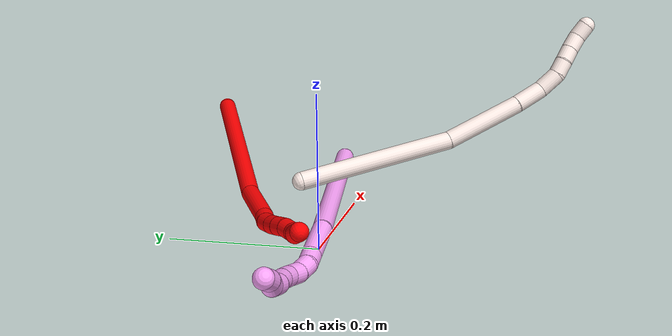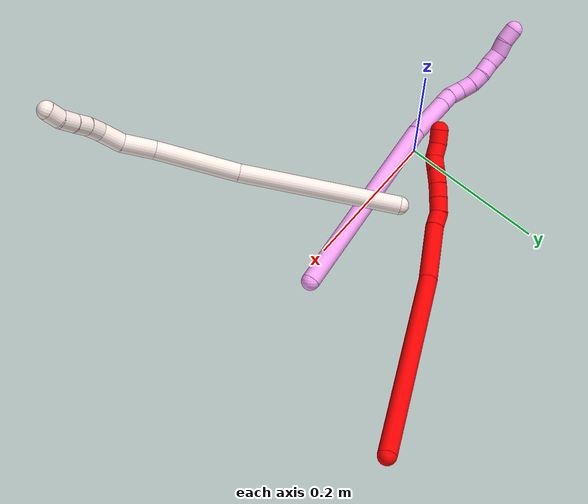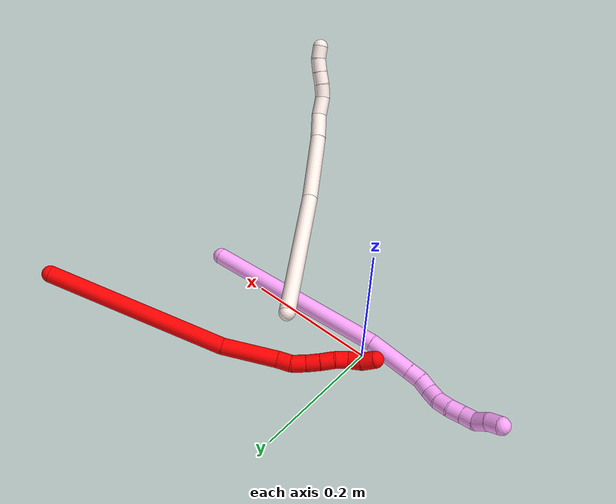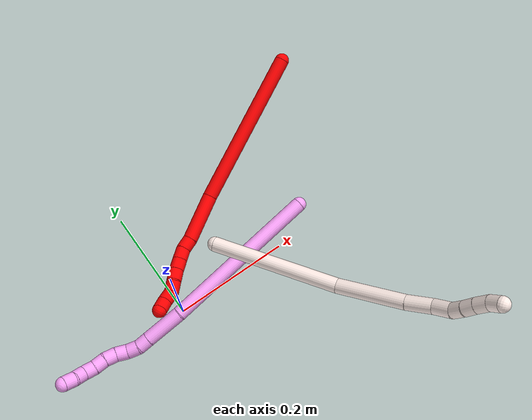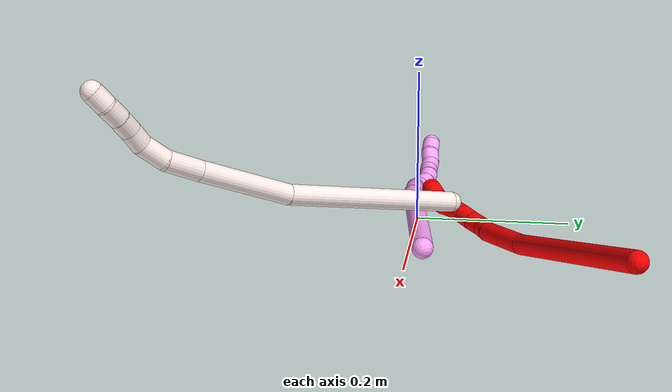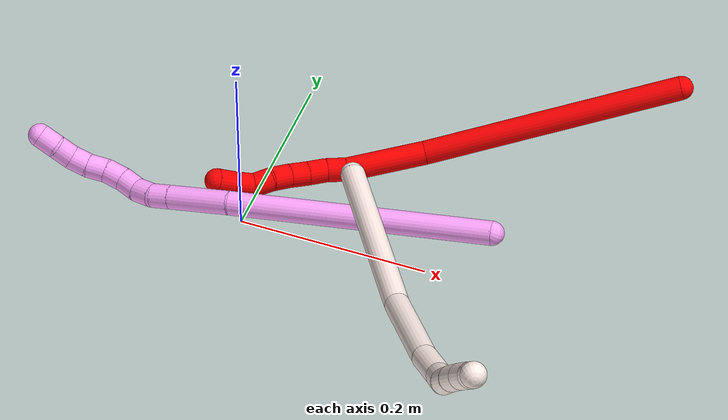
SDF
<sdf version="1.7">
 <world name="default">
  <model name="2">
   <static>0</static>
   <link name="2">
    <collision name="collision-cylinder-e_1_1_4">
     <pose>0.000146 -7.5e-05 -0.136751 3.14105 0.001065 2.19373</pose>
     <geometry><cylinder><radius>0.0125</radius><length>0.273503</length></cylinder></geometry>
     <surface>
      <friction><ode><mu>1.16</mu><mu2>1.16</mu2><slip1>0</slip1><slip2>0</slip2></ode></friction>
      <contact><ode><kp>1e+06</kp><kd>1</kd><max_vel>0</max_vel><min_depth>0.001</min_depth></ode></contact>
     </surface>
    </collision>
    <visual name="visual-cylinder-e_1_1_4">
     <pose>0.000146 -7.5e-05 -0.136751 3.14105 0.001065 2.19373</pose>
     <geometry><cylinder><radius>0.0125</radius><length>0.273503</length></cylinder></geometry>
     <material><ambient>1 0 0 1</ambient></material>
    </visual>
    <collision name="collision-cylinder-e_2_4_5">
     <pose>-0.00496 -0.004919 -0.314505 3.02578 -0.126531 -1.65943</pose>
     <geometry><cylinder><radius>0.0125</radius><length>0.083223</length></cylinder></geometry>
     <surface>
      <friction><ode><mu>1.16</mu><mu2>1.16</mu2><slip1>0</slip1><slip2>0</slip2></ode></friction>
      <contact><ode><kp>1e+06</kp><kd>1</kd><max_vel>0</max_vel><min_depth>0.001</min_depth></ode></contact>
     </surface>
    </collision>
    <visual name="visual-cylinder-e_2_4_5">
     <pose>-0.00496 -0.004919 -0.314505 3.02578 -0.126531 -1.65943</pose>
     <geometry><cylinder><radius>0.0125</radius><length>0.083223</length></cylinder></geometry>
     <material><ambient>1 0 0 1</ambient></material>
    </visual>
    <collision name="collision-cylinder-e_3_5_6">
     <pose>-0.012813 -0.009418 -0.365787 -3.11526 -0.247831 2.93097</pose>
     <geometry><cylinder><radius>0.0125</radius><length>0.021214</length></cylinder></geometry>
     <surface>
      <friction><ode><mu>1.16</mu><mu2>1.16</mu2><slip1>0</slip1><slip2>0</slip2></ode></friction>
      <contact><ode><kp>1e+06</kp><kd>1</kd><max_vel>0</max_vel><min_depth>0.001</min_depth></ode></contact>
     </surface>
    </collision>
    <visual name="visual-cylinder-e_3_5_6">
     <pose>-0.012813 -0.009418 -0.365787 -3.11526 -0.247831 2.93097</pose>
     <geometry><cylinder><radius>0.0125</radius><length>0.021214</length></cylinder></geometry>
     <material><ambient>1 0 0 1</ambient></material>
    </visual>
    <collision name="collision-cylinder-e_4_6_7">
     <pose>-0.018673 -0.012293 -0.38583 2.82997 -0.307532 -1.55737</pose>
     <geometry><cylinder><radius>0.0125</radius><length>0.021525</length></cylinder></geometry>
     <surface>
      <friction><ode><mu>1.16</mu><mu2>1.16</mu2><slip1>0</slip1><slip2>0</slip2></ode></friction>
      <contact><ode><kp>1e+06</kp><kd>1</kd><max_vel>0</max_vel><min_depth>0.001</min_depth></ode></contact>
     </surface>
    </collision>
    <visual name="visual-cylinder-e_4_6_7">
     <pose>-0.018673 -0.012293 -0.38583 2.82997 -0.307532 -1.55737</pose>
     <geometry><cylinder><radius>0.0125</radius><length>0.021525</length></cylinder></geometry>
     <material><ambient>1 0 0 1</ambient></material>
    </visual>
    <collision name="collision-cylinder-e_5_7_8">
     <pose>-0.025749 -0.018811 -0.40445 2.77768 -0.383024 -1.62316</pose>
     <geometry><cylinder><radius>0.0125</radius><length>0.020435</length></cylinder></geometry>
     <surface>
      <friction><ode><mu>1.16</mu><mu2>1.16</mu2><slip1>0</slip1><slip2>0</slip2></ode></friction>
      <contact><ode><kp>1e+06</kp><kd>1</kd><max_vel>0</max_vel><min_depth>0.001</min_depth></ode></contact>
     </surface>
    </collision>
    <visual name="visual-cylinder-e_5_7_8">
     <pose>-0.025749 -0.018811 -0.40445 2.77768 -0.383024 -1.62316</pose>
     <geometry><cylinder><radius>0.0125</radius><length>0.020435</length></cylinder></geometry>
     <material><ambient>1 0 0 1</ambient></material>
    </visual>
    <collision name="collision-cylinder-e_6_8_9">
     <pose>-0.033024 -0.026185 -0.421846 2.70343 -0.351336 -1.34605</pose>
     <geometry><cylinder><radius>0.0125</radius><length>0.020089</length></cylinder></geometry>
     <surface>
      <friction><ode><mu>1.16</mu><mu2>1.16</mu2><slip1>0</slip1><slip2>0</slip2></ode></friction>
      <contact><ode><kp>1e+06</kp><kd>1</kd><max_vel>0</max_vel><min_depth>0.001</min_depth></ode></contact>
     </surface>
    </collision>
    <visual name="visual-cylinder-e_6_8_9">
     <pose>-0.033024 -0.026185 -0.421846 2.70343 -0.351336 -1.34605</pose>
     <geometry><cylinder><radius>0.0125</radius><length>0.020089</length></cylinder></geometry>
     <material><ambient>1 0 0 1</ambient></material>
    </visual>
    <collision name="collision-cylinder-e_7_9_10">
     <pose>-0.038015 -0.033724 -0.439614 2.77554 -0.153956 -0.789644</pose>
     <geometry><cylinder><radius>0.0125</radius><length>0.020003</length></cylinder></geometry>
     <surface>
      <friction><ode><mu>1.16</mu><mu2>1.16</mu2><slip1>0</slip1><slip2>0</slip2></ode></friction>
      <contact><ode><kp>1e+06</kp><kd>1</kd><max_vel>0</max_vel><min_depth>0.001</min_depth></ode></contact>
     </surface>
    </collision>
    <visual name="visual-cylinder-e_7_9_10">
     <pose>-0.038015 -0.033724 -0.439614 2.77554 -0.153956 -0.789644</pose>
     <geometry><cylinder><radius>0.0125</radius><length>0.020003</length></cylinder></geometry>
     <material><ambient>1 0 0 1</ambient></material>
    </visual>
    <collision name="collision-cylinder-e_8_10_11">
     <pose>-0.044055 -0.037624 -0.457766 3.10104 -0.467371 -2.97161</pose>
     <geometry><cylinder><radius>0.0125</radius><length>0.020006</length></cylinder></geometry>
     <surface>
      <friction><ode><mu>1.16</mu><mu2>1.16</mu2><slip1>0</slip1><slip2>0</slip2></ode></friction>
      <contact><ode><kp>1e+06</kp><kd>1</kd><max_vel>0</max_vel><min_depth>0.001</min_depth></ode></contact>
     </surface>
    </collision>
    <visual name="visual-cylinder-e_8_10_11">
     <pose>-0.044055 -0.037624 -0.457766 3.10104 -0.467371 -2.97161</pose>
     <geometry><cylinder><radius>0.0125</radius><length>0.020006</length></cylinder></geometry>
     <material><ambient>1 0 0 1</ambient></material>
    </visual>
    <collision name="collision-cylinder-e_9_11_2">
     <pose>-0.054673 -0.040168 -0.474299 2.86232 -0.657337 -2.35976</pose>
     <geometry><cylinder><radius>0.0125</radius><length>0.020002</length></cylinder></geometry>
     <surface>
      <friction><ode><mu>1.16</mu><mu2>1.16</mu2><slip1>0</slip1><slip2>0</slip2></ode></friction>
      <contact><ode><kp>1e+06</kp><kd>1</kd><max_vel>0</max_vel><min_depth>0.001</min_depth></ode></contact>
     </surface>
    </collision>
    <visual name="visual-cylinder-e_9_11_2">
     <pose>-0.054673 -0.040168 -0.474299 2.86232 -0.657337 -2.35976</pose>
     <geometry><cylinder><radius>0.0125</radius><length>0.020002</length></cylinder></geometry>
     <material><ambient>1 0 0 1</ambient></material>
    </visual>
    <collision name="collision-sphere-2">
     <pose>-0.060784 -0.04235 -0.481909 0 -0 0</pose>
     <geometry><sphere><radius>0.0125</radius></sphere></geometry>
     <surface>
      <friction><ode><mu>1.16</mu><mu2>1.16</mu2><slip1>0</slip1><slip2>0</slip2></ode></friction>
      <contact><ode><kp>1e+06</kp><kd>1</kd><max_vel>0</max_vel><min_depth>0.001</min_depth></ode></contact>
     </surface>
    </collision>
    <visual name="visual-sphere-2">
     <pose>-0.060784 -0.04235 -0.481909 0 -0 0</pose>
     <geometry><sphere><radius>0.0125</radius></sphere></geometry>
     <material><ambient>1 0 0 1</ambient></material>
    </visual>
    <collision name="collision-sphere-11">
     <pose>-0.048562 -0.037986 -0.466689 0 -0 0</pose>
     <geometry><sphere><radius>0.0125</radius></sphere></geometry>
     <surface>
      <friction><ode><mu>1.16</mu><mu2>1.16</mu2><slip1>0</slip1><slip2>0</slip2></ode></friction>
      <contact><ode><kp>1e+06</kp><kd>1</kd><max_vel>0</max_vel><min_depth>0.001</min_depth></ode></contact>
     </surface>
    </collision>
    <visual name="visual-sphere-11">
     <pose>-0.048562 -0.037986 -0.466689 0 -0 0</pose>
     <geometry><sphere><radius>0.0125</radius></sphere></geometry>
     <material><ambient>1 0 0 1</ambient></material>
    </visual>
    <collision name="collision-sphere-10">
     <pose>-0.039549 -0.037261 -0.448843 0 -0 0</pose>
     <geometry><sphere><radius>0.0125</radius></sphere></geometry>
     <surface>
      <friction><ode><mu>1.16</mu><mu2>1.16</mu2><slip1>0</slip1><slip2>0</slip2></ode></friction>
      <contact><ode><kp>1e+06</kp><kd>1</kd><max_vel>0</max_vel><min_depth>0.001</min_depth></ode></contact>
     </surface>
    </collision>
    <visual name="visual-sphere-10">
     <pose>-0.039549 -0.037261 -0.448843 0 -0 0</pose>
     <geometry><sphere><radius>0.0125</radius></sphere></geometry>
     <material><ambient>1 0 0 1</ambient></material>
    </visual>
    <collision name="collision-sphere-9">
     <pose>-0.036481 -0.030186 -0.430386 0 -0 0</pose>
     <geometry><sphere><radius>0.0125</radius></sphere></geometry>
     <surface>
      <friction><ode><mu>1.16</mu><mu2>1.16</mu2><slip1>0</slip1><slip2>0</slip2></ode></friction>
      <contact><ode><kp>1e+06</kp><kd>1</kd><max_vel>0</max_vel><min_depth>0.001</min_depth></ode></contact>
     </surface>
    </collision>
    <visual name="visual-sphere-9">
     <pose>-0.036481 -0.030186 -0.430386 0 -0 0</pose>
     <geometry><sphere><radius>0.0125</radius></sphere></geometry>
     <material><ambient>1 0 0 1</ambient></material>
    </visual>
    <collision name="collision-sphere-4">
     <pose>0.000291 -0.000149 -0.273503 0 -0 0</pose>
     <geometry><sphere><radius>0.0125</radius></sphere></geometry>
     <surface>
      <friction><ode><mu>1.16</mu><mu2>1.16</mu2><slip1>0</slip1><slip2>0</slip2></ode></friction>
      <contact><ode><kp>1e+06</kp><kd>1</kd><max_vel>0</max_vel><min_depth>0.001</min_depth></ode></contact>
     </surface>
    </collision>
    <visual name="visual-sphere-4">
     <pose>0.000291 -0.000149 -0.273503 0 -0 0</pose>
     <geometry><sphere><radius>0.0125</radius></sphere></geometry>
     <material><ambient>1 0 0 1</ambient></material>
    </visual>
    <collision name="collision-sphere-1">
     <geometry><sphere><radius>0.0125</radius></sphere></geometry>
     <surface>
      <friction><ode><mu>1.16</mu><mu2>1.16</mu2><slip1>0</slip1><slip2>0</slip2></ode></friction>
      <contact><ode><kp>1e+06</kp><kd>1</kd><max_vel>0</max_vel><min_depth>0.001</min_depth></ode></contact>
     </surface>
    </collision>
    <visual name="visual-sphere-1">
     <geometry><sphere><radius>0.0125</radius></sphere></geometry>
     <material><ambient>1 0 0 1</ambient></material>
    </visual>
    <collision name="collision-sphere-8">
     <pose>-0.029568 -0.022184 -0.413306 0 -0 0</pose>
     <geometry><sphere><radius>0.0125</radius></sphere></geometry>
     <surface>
      <friction><ode><mu>1.16</mu><mu2>1.16</mu2><slip1>0</slip1><slip2>0</slip2></ode></friction>
      <contact><ode><kp>1e+06</kp><kd>1</kd><max_vel>0</max_vel><min_depth>0.001</min_depth></ode></contact>
     </surface>
    </collision>
    <visual name="visual-sphere-8">
     <pose>-0.029568 -0.022184 -0.413306 0 -0 0</pose>
     <geometry><sphere><radius>0.0125</radius></sphere></geometry>
     <material><ambient>1 0 0 1</ambient></material>
    </visual>
    <collision name="collision-sphere-5">
     <pose>-0.010211 -0.009689 -0.355508 0 -0 0</pose>
     <geometry><sphere><radius>0.0125</radius></sphere></geometry>
     <surface>
      <friction><ode><mu>1.16</mu><mu2>1.16</mu2><slip1>0</slip1><slip2>0</slip2></ode></friction>
      <contact><ode><kp>1e+06</kp><kd>1</kd><max_vel>0</max_vel><min_depth>0.001</min_depth></ode></contact>
     </surface>
    </collision>
    <visual name="visual-sphere-5">
     <pose>-0.010211 -0.009689 -0.355508 0 -0 0</pose>
     <geometry><sphere><radius>0.0125</radius></sphere></geometry>
     <material><ambient>1 0 0 1</ambient></material>
    </visual>
    <collision name="collision-sphere-6">
     <pose>-0.015415 -0.009148 -0.376066 0 -0 0</pose>
     <geometry><sphere><radius>0.0125</radius></sphere></geometry>
     <surface>
      <friction><ode><mu>1.16</mu><mu2>1.16</mu2><slip1>0</slip1><slip2>0</slip2></ode></friction>
      <contact><ode><kp>1e+06</kp><kd>1</kd><max_vel>0</max_vel><min_depth>0.001</min_depth></ode></contact>
     </surface>
    </collision>
    <visual name="visual-sphere-6">
     <pose>-0.015415 -0.009148 -0.376066 0 -0 0</pose>
     <geometry><sphere><radius>0.0125</radius></sphere></geometry>
     <material><ambient>1 0 0 1</ambient></material>
    </visual>
    <collision name="collision-sphere-7">
     <pose>-0.021931 -0.015438 -0.395593 0 -0 0</pose>
     <geometry><sphere><radius>0.0125</radius></sphere></geometry>
     <surface>
      <friction><ode><mu>1.16</mu><mu2>1.16</mu2><slip1>0</slip1><slip2>0</slip2></ode></friction>
      <contact><ode><kp>1e+06</kp><kd>1</kd><max_vel>0</max_vel><min_depth>0.001</min_depth></ode></contact>
     </surface>
    </collision>
    <visual name="visual-sphere-7">
     <pose>-0.021931 -0.015438 -0.395593 0 -0 0</pose>
     <geometry><sphere><radius>0.0125</radius></sphere></geometry>
     <material><ambient>1 0 0 1</ambient></material>
    </visual>
    <inertial>
     <pose>-0.009943 -0.008071 -0.247638 0 -0 0</pose>
     <mass>0.5</mass>
     <inertia><ixx>0.000324</ixx><ixy>0</ixy><ixz>0</ixz><iyy>0.002343</iyy><iyz>0</iyz><izz>-2e-05</izz></inertia>
    </inertial>
   </link>
   <pose>0.388406 0.254164 0.091844 -0.560455 1.26297 -0.133069</pose>
  </model>
  <model name="4">
   <static>0</static>
   <link name="4">
    <collision name="collision-cylinder-e_1_1_4">
     <pose>-0.098628 -0.025709 0.091666 0.273437 -0.803067 -0.116698</pose>
     <geometry><cylinder><radius>0.0125</radius><length>0.274162</length></cylinder></geometry>
     <surface>
      <friction><ode><mu>1.16</mu><mu2>1.16</mu2><slip1>0</slip1><slip2>0</slip2></ode></friction>
      <contact><ode><kp>1e+06</kp><kd>1</kd><max_vel>0</max_vel><min_depth>0.001</min_depth></ode></contact>
     </surface>
    </collision>
    <visual name="visual-cylinder-e_1_1_4">
     <pose>-0.098628 -0.025709 0.091666 0.273437 -0.803067 -0.116698</pose>
     <geometry><cylinder><radius>0.0125</radius><length>0.274162</length></cylinder></geometry>
     <material><ambient>1 0.65098 0.996078 1</ambient></material>
    </visual>
    <collision name="collision-cylinder-e_2_4_5">
     <pose>-0.223533 -0.057559 0.201718 0.322399 -0.935208 -0.163855</pose>
     <geometry><cylinder><radius>0.0125</radius><length>0.065305</length></cylinder></geometry>
     <surface>
      <friction><ode><mu>1.16</mu><mu2>1.16</mu2><slip1>0</slip1><slip2>0</slip2></ode></friction>
      <contact><ode><kp>1e+06</kp><kd>1</kd><max_vel>0</max_vel><min_depth>0.001</min_depth></ode></contact>
     </surface>
    </collision>
    <visual name="visual-cylinder-e_2_4_5">
     <pose>-0.223533 -0.057559 0.201718 0.322399 -0.935208 -0.163855</pose>
     <geometry><cylinder><radius>0.0125</radius><length>0.065305</length></cylinder></geometry>
     <material><ambient>1 0.65098 0.996078 1</ambient></material>
    </visual>
    <collision name="collision-cylinder-e_3_5_6">
     <pose>-0.257923 -0.065652 0.225806 0.329588 -0.931904 -0.166873</pose>
     <geometry><cylinder><radius>0.0125</radius><length>0.020215</length></cylinder></geometry>
     <surface>
      <friction><ode><mu>1.16</mu><mu2>1.16</mu2><slip1>0</slip1><slip2>0</slip2></ode></friction>
      <contact><ode><kp>1e+06</kp><kd>1</kd><max_vel>0</max_vel><min_depth>0.001</min_depth></ode></contact>
     </surface>
    </collision>
    <visual name="visual-cylinder-e_3_5_6">
     <pose>-0.257923 -0.065652 0.225806 0.329588 -0.931904 -0.166873</pose>
     <geometry><cylinder><radius>0.0125</radius><length>0.020215</length></cylinder></geometry>
     <material><ambient>1 0.65098 0.996078 1</ambient></material>
    </visual>
    <collision name="collision-cylinder-e_4_6_7">
     <pose>-0.275242 -0.067081 0.235555 -0.128299 -1.15367 0.083544</pose>
     <geometry><cylinder><radius>0.0125</radius><length>0.020137</length></cylinder></geometry>
     <surface>
      <friction><ode><mu>1.16</mu><mu2>1.16</mu2><slip1>0</slip1><slip2>0</slip2></ode></friction>
      <contact><ode><kp>1e+06</kp><kd>1</kd><max_vel>0</max_vel><min_depth>0.001</min_depth></ode></contact>
     </surface>
    </collision>
    <visual name="visual-cylinder-e_4_6_7">
     <pose>-0.275242 -0.067081 0.235555 -0.128299 -1.15367 0.083544</pose>
     <geometry><cylinder><radius>0.0125</radius><length>0.020137</length></cylinder></geometry>
     <material><ambient>1 0.65098 0.996078 1</ambient></material>
    </visual>
    <collision name="collision-cylinder-e_5_7_8">
     <pose>-0.292434 -0.063577 0.24493 -0.510178 -0.917932 0.256313</pose>
     <geometry><cylinder><radius>0.0125</radius><length>0.020107</length></cylinder></geometry>
     <surface>
      <friction><ode><mu>1.16</mu><mu2>1.16</mu2><slip1>0</slip1><slip2>0</slip2></ode></friction>
      <contact><ode><kp>1e+06</kp><kd>1</kd><max_vel>0</max_vel><min_depth>0.001</min_depth></ode></contact>
     </surface>
    </collision>
    <visual name="visual-cylinder-e_5_7_8">
     <pose>-0.292434 -0.063577 0.24493 -0.510178 -0.917932 0.256313</pose>
     <geometry><cylinder><radius>0.0125</radius><length>0.020107</length></cylinder></geometry>
     <material><ambient>1 0.65098 0.996078 1</ambient></material>
    </visual>
    <collision name="collision-cylinder-e_6_8_9">
     <pose>-0.307301 -0.058994 0.257352 -0.221941 -0.757803 0.08867</pose>
     <geometry><cylinder><radius>0.0125</radius><length>0.020023</length></cylinder></geometry>
     <surface>
      <friction><ode><mu>1.16</mu><mu2>1.16</mu2><slip1>0</slip1><slip2>0</slip2></ode></friction>
      <contact><ode><kp>1e+06</kp><kd>1</kd><max_vel>0</max_vel><min_depth>0.001</min_depth></ode></contact>
     </surface>
    </collision>
    <visual name="visual-cylinder-e_6_8_9">
     <pose>-0.307301 -0.058994 0.257352 -0.221941 -0.757803 0.08867</pose>
     <geometry><cylinder><radius>0.0125</radius><length>0.020023</length></cylinder></geometry>
     <material><ambient>1 0.65098 0.996078 1</ambient></material>
    </visual>
    <collision name="collision-cylinder-e_7_9_10">
     <pose>-0.320694 -0.057807 0.272041 0.05454 -0.708081 -0.020163</pose>
     <geometry><cylinder><radius>0.0125</radius><length>0.020026</length></cylinder></geometry>
     <surface>
      <friction><ode><mu>1.16</mu><mu2>1.16</mu2><slip1>0</slip1><slip2>0</slip2></ode></friction>
      <contact><ode><kp>1e+06</kp><kd>1</kd><max_vel>0</max_vel><min_depth>0.001</min_depth></ode></contact>
     </surface>
    </collision>
    <visual name="visual-cylinder-e_7_9_10">
     <pose>-0.320694 -0.057807 0.272041 0.05454 -0.708081 -0.020163</pose>
     <geometry><cylinder><radius>0.0125</radius><length>0.020026</length></cylinder></geometry>
     <material><ambient>1 0.65098 0.996078 1</ambient></material>
    </visual>
    <collision name="collision-cylinder-e_8_10_11">
     <pose>-0.333502 -0.056709 0.287272 -0.195596 -0.680022 0.069386</pose>
     <geometry><cylinder><radius>0.0125</radius><length>0.020024</length></cylinder></geometry>
     <surface>
      <friction><ode><mu>1.16</mu><mu2>1.16</mu2><slip1>0</slip1><slip2>0</slip2></ode></friction>
      <contact><ode><kp>1e+06</kp><kd>1</kd><max_vel>0</max_vel><min_depth>0.001</min_depth></ode></contact>
     </surface>
    </collision>
    <visual name="visual-cylinder-e_8_10_11">
     <pose>-0.333502 -0.056709 0.287272 -0.195596 -0.680022 0.069386</pose>
     <geometry><cylinder><radius>0.0125</radius><length>0.020024</length></cylinder></geometry>
     <material><ambient>1 0.65098 0.996078 1</ambient></material>
    </visual>
    <collision name="collision-cylinder-e_9_11_12">
     <pose>-0.341913 -0.052588 0.304328 -0.270093 -0.213123 0.029066</pose>
     <geometry><cylinder><radius>0.0125</radius><length>0.02</length></cylinder></geometry>
     <surface>
      <friction><ode><mu>1.16</mu><mu2>1.16</mu2><slip1>0</slip1><slip2>0</slip2></ode></friction>
      <contact><ode><kp>1e+06</kp><kd>1</kd><max_vel>0</max_vel><min_depth>0.001</min_depth></ode></contact>
     </surface>
    </collision>
    <visual name="visual-cylinder-e_9_11_12">
     <pose>-0.341913 -0.052588 0.304328 -0.270093 -0.213123 0.029066</pose>
     <geometry><cylinder><radius>0.0125</radius><length>0.02</length></cylinder></geometry>
     <material><ambient>1 0.65098 0.996078 1</ambient></material>
    </visual>
    <collision name="collision-cylinder-e_10_12_2">
     <pose>-0.348532 -0.047162 0.322219 -0.321133 -0.467179 0.077033</pose>
     <geometry><cylinder><radius>0.0125</radius><length>0.02</length></cylinder></geometry>
     <surface>
      <friction><ode><mu>1.16</mu><mu2>1.16</mu2><slip1>0</slip1><slip2>0</slip2></ode></friction>
      <contact><ode><kp>1e+06</kp><kd>1</kd><max_vel>0</max_vel><min_depth>0.001</min_depth></ode></contact>
     </surface>
    </collision>
    <visual name="visual-cylinder-e_10_12_2">
     <pose>-0.348532 -0.047162 0.322219 -0.321133 -0.467179 0.077033</pose>
     <geometry><cylinder><radius>0.0125</radius><length>0.02</length></cylinder></geometry>
     <material><ambient>1 0.65098 0.996078 1</ambient></material>
    </visual>
    <collision name="collision-sphere-2">
     <pose>-0.353036 -0.044344 0.330692 0 -0 0</pose>
     <geometry><sphere><radius>0.0125</radius></sphere></geometry>
     <surface>
      <friction><ode><mu>1.16</mu><mu2>1.16</mu2><slip1>0</slip1><slip2>0</slip2></ode></friction>
      <contact><ode><kp>1e+06</kp><kd>1</kd><max_vel>0</max_vel><min_depth>0.001</min_depth></ode></contact>
     </surface>
    </collision>
    <visual name="visual-sphere-2">
     <pose>-0.353036 -0.044344 0.330692 0 -0 0</pose>
     <geometry><sphere><radius>0.0125</radius></sphere></geometry>
     <material><ambient>1 0.65098 0.996078 1</ambient></material>
    </visual>
    <collision name="collision-sphere-12">
     <pose>-0.344028 -0.04998 0.313747 0 -0 0</pose>
     <geometry><sphere><radius>0.0125</radius></sphere></geometry>
     <surface>
      <friction><ode><mu>1.16</mu><mu2>1.16</mu2><slip1>0</slip1><slip2>0</slip2></ode></friction>
      <contact><ode><kp>1e+06</kp><kd>1</kd><max_vel>0</max_vel><min_depth>0.001</min_depth></ode></contact>
     </surface>
    </collision>
    <visual name="visual-sphere-12">
     <pose>-0.344028 -0.04998 0.313747 0 -0 0</pose>
     <geometry><sphere><radius>0.0125</radius></sphere></geometry>
     <material><ambient>1 0.65098 0.996078 1</ambient></material>
    </visual>
    <collision name="collision-sphere-11">
     <pose>-0.339798 -0.055196 0.294908 0 -0 0</pose>
     <geometry><sphere><radius>0.0125</radius></sphere></geometry>
     <surface>
      <friction><ode><mu>1.16</mu><mu2>1.16</mu2><slip1>0</slip1><slip2>0</slip2></ode></friction>
      <contact><ode><kp>1e+06</kp><kd>1</kd><max_vel>0</max_vel><min_depth>0.001</min_depth></ode></contact>
     </surface>
    </collision>
    <visual name="visual-sphere-11">
     <pose>-0.339798 -0.055196 0.294908 0 -0 0</pose>
     <geometry><sphere><radius>0.0125</radius></sphere></geometry>
     <material><ambient>1 0.65098 0.996078 1</ambient></material>
    </visual>
    <collision name="collision-sphere-10">
     <pose>-0.327207 -0.058222 0.279635 0 -0 0</pose>
     <geometry><sphere><radius>0.0125</radius></sphere></geometry>
     <surface>
      <friction><ode><mu>1.16</mu><mu2>1.16</mu2><slip1>0</slip1><slip2>0</slip2></ode></friction>
      <contact><ode><kp>1e+06</kp><kd>1</kd><max_vel>0</max_vel><min_depth>0.001</min_depth></ode></contact>
     </surface>
    </collision>
    <visual name="visual-sphere-10">
     <pose>-0.327207 -0.058222 0.279635 0 -0 0</pose>
     <geometry><sphere><radius>0.0125</radius></sphere></geometry>
     <material><ambient>1 0.65098 0.996078 1</ambient></material>
    </visual>
    <collision name="collision-sphere-9">
     <pose>-0.314182 -0.057393 0.264446 0 -0 0</pose>
     <geometry><sphere><radius>0.0125</radius></sphere></geometry>
     <surface>
      <friction><ode><mu>1.16</mu><mu2>1.16</mu2><slip1>0</slip1><slip2>0</slip2></ode></friction>
      <contact><ode><kp>1e+06</kp><kd>1</kd><max_vel>0</max_vel><min_depth>0.001</min_depth></ode></contact>
     </surface>
    </collision>
    <visual name="visual-sphere-9">
     <pose>-0.314182 -0.057393 0.264446 0 -0 0</pose>
     <geometry><sphere><radius>0.0125</radius></sphere></geometry>
     <material><ambient>1 0.65098 0.996078 1</ambient></material>
    </visual>
    <collision name="collision-sphere-4">
     <pose>-0.197256 -0.051418 0.183332 0 -0 0</pose>
     <geometry><sphere><radius>0.0125</radius></sphere></geometry>
     <surface>
      <friction><ode><mu>1.16</mu><mu2>1.16</mu2><slip1>0</slip1><slip2>0</slip2></ode></friction>
      <contact><ode><kp>1e+06</kp><kd>1</kd><max_vel>0</max_vel><min_depth>0.001</min_depth></ode></contact>
     </surface>
    </collision>
    <visual name="visual-sphere-4">
     <pose>-0.197256 -0.051418 0.183332 0 -0 0</pose>
     <geometry><sphere><radius>0.0125</radius></sphere></geometry>
     <material><ambient>1 0.65098 0.996078 1</ambient></material>
    </visual>
    <collision name="collision-sphere-1">
     <geometry><sphere><radius>0.0125</radius></sphere></geometry>
     <surface>
      <friction><ode><mu>1.16</mu><mu2>1.16</mu2><slip1>0</slip1><slip2>0</slip2></ode></friction>
      <contact><ode><kp>1e+06</kp><kd>1</kd><max_vel>0</max_vel><min_depth>0.001</min_depth></ode></contact>
     </surface>
    </collision>
    <visual name="visual-sphere-1">
     <geometry><sphere><radius>0.0125</radius></sphere></geometry>
     <material><ambient>1 0.65098 0.996078 1</ambient></material>
    </visual>
    <collision name="collision-sphere-8">
     <pose>-0.30042 -0.060594 0.250259 0 -0 0</pose>
     <geometry><sphere><radius>0.0125</radius></sphere></geometry>
     <surface>
      <friction><ode><mu>1.16</mu><mu2>1.16</mu2><slip1>0</slip1><slip2>0</slip2></ode></friction>
      <contact><ode><kp>1e+06</kp><kd>1</kd><max_vel>0</max_vel><min_depth>0.001</min_depth></ode></contact>
     </surface>
    </collision>
    <visual name="visual-sphere-8">
     <pose>-0.30042 -0.060594 0.250259 0 -0 0</pose>
     <geometry><sphere><radius>0.0125</radius></sphere></geometry>
     <material><ambient>1 0.65098 0.996078 1</ambient></material>
    </visual>
    <collision name="collision-sphere-5">
     <pose>-0.249809 -0.063701 0.220103 0 -0 0</pose>
     <geometry><sphere><radius>0.0125</radius></sphere></geometry>
     <surface>
      <friction><ode><mu>1.16</mu><mu2>1.16</mu2><slip1>0</slip1><slip2>0</slip2></ode></friction>
      <contact><ode><kp>1e+06</kp><kd>1</kd><max_vel>0</max_vel><min_depth>0.001</min_depth></ode></contact>
     </surface>
    </collision>
    <visual name="visual-sphere-5">
     <pose>-0.249809 -0.063701 0.220103 0 -0 0</pose>
     <geometry><sphere><radius>0.0125</radius></sphere></geometry>
     <material><ambient>1 0.65098 0.996078 1</ambient></material>
    </visual>
    <collision name="collision-sphere-6">
     <pose>-0.266037 -0.067603 0.231509 0 -0 0</pose>
     <geometry><sphere><radius>0.0125</radius></sphere></geometry>
     <surface>
      <friction><ode><mu>1.16</mu><mu2>1.16</mu2><slip1>0</slip1><slip2>0</slip2></ode></friction>
      <contact><ode><kp>1e+06</kp><kd>1</kd><max_vel>0</max_vel><min_depth>0.001</min_depth></ode></contact>
     </surface>
    </collision>
    <visual name="visual-sphere-6">
     <pose>-0.266037 -0.067603 0.231509 0 -0 0</pose>
     <geometry><sphere><radius>0.0125</radius></sphere></geometry>
     <material><ambient>1 0.65098 0.996078 1</ambient></material>
    </visual>
    <collision name="collision-sphere-7">
     <pose>-0.284448 -0.066559 0.2396 0 -0 0</pose>
     <geometry><sphere><radius>0.0125</radius></sphere></geometry>
     <surface>
      <friction><ode><mu>1.16</mu><mu2>1.16</mu2><slip1>0</slip1><slip2>0</slip2></ode></friction>
      <contact><ode><kp>1e+06</kp><kd>1</kd><max_vel>0</max_vel><min_depth>0.001</min_depth></ode></contact>
     </surface>
    </collision>
    <visual name="visual-sphere-7">
     <pose>-0.284448 -0.066559 0.2396 0 -0 0</pose>
     <geometry><sphere><radius>0.0125</radius></sphere></geometry>
     <material><ambient>1 0.65098 0.996078 1</ambient></material>
    </visual>
    <inertial>
     <pose>-0.182674 -0.040466 0.162844 0 -0 0</pose>
     <mass>0.5</mass>
     <inertia>
      <ixx>0.001046</ixx>
      <ixy>0</ixy>
      <ixz>0</ixz>
      <iyy>0.001583</iyy>
      <iyz>0</iyz>
      <izz>0.001625</izz>
     </inertia>
    </inertial>
   </link>
   <pose>0.261395 0.027919 0.051767 0.797942 -0.528993 -0.528189</pose>
  </model>
  <model name="11">
   <static>0</static>
   <link name="11">
    <collision name="collision-cylinder-e_1_1_4">
     <pose>0.00685 -0.023804 0.106882 0.219137 0.062471 0.006875</pose>
     <geometry><cylinder><radius>0.0125</radius><length>0.21943</length></cylinder></geometry>
     <surface>
      <friction><ode><mu>1.16</mu><mu2>1.16</mu2><slip1>0</slip1><slip2>0</slip2></ode></friction>
      <contact><ode><kp>1e+06</kp><kd>1</kd><max_vel>0</max_vel><min_depth>0.001</min_depth></ode></contact>
     </surface>
    </collision>
    <visual name="visual-cylinder-e_1_1_4">
     <pose>0.00685 -0.023804 0.106882 0.219137 0.062471 0.006875</pose>
     <geometry><cylinder><radius>0.0125</radius><length>0.21943</length></cylinder></geometry>
     <material><ambient>1 0.933333 0.909804 1</ambient></material>
    </visual>
    <collision name="collision-cylinder-e_2_4_5">
     <pose>0.018412 -0.048237 0.271585 0.010885 0.081323 0.000443</pose>
     <geometry><cylinder><radius>0.0125</radius><length>0.116032</length></cylinder></geometry>
     <surface>
      <friction><ode><mu>1.16</mu><mu2>1.16</mu2><slip1>0</slip1><slip2>0</slip2></ode></friction>
      <contact><ode><kp>1e+06</kp><kd>1</kd><max_vel>0</max_vel><min_depth>0.001</min_depth></ode></contact>
     </surface>
    </collision>
    <visual name="visual-cylinder-e_2_4_5">
     <pose>0.018412 -0.048237 0.271585 0.010885 0.081323 0.000443</pose>
     <geometry><cylinder><radius>0.0125</radius><length>0.116032</length></cylinder></geometry>
     <material><ambient>1 0.933333 0.909804 1</ambient></material>
    </visual>
    <collision name="collision-cylinder-e_3_5_6">
     <pose>0.026626 -0.048097 0.351196 -0.03533 0.159208 -0.002819</pose>
     <geometry><cylinder><radius>0.0125</radius><length>0.044165</length></cylinder></geometry>
     <surface>
      <friction><ode><mu>1.16</mu><mu2>1.16</mu2><slip1>0</slip1><slip2>0</slip2></ode></friction>
      <contact><ode><kp>1e+06</kp><kd>1</kd><max_vel>0</max_vel><min_depth>0.001</min_depth></ode></contact>
     </surface>
    </collision>
    <visual name="visual-cylinder-e_3_5_6">
     <pose>0.026626 -0.048097 0.351196 -0.03533 0.159208 -0.002819</pose>
     <geometry><cylinder><radius>0.0125</radius><length>0.044165</length></cylinder></geometry>
     <material><ambient>1 0.933333 0.909804 1</ambient></material>
    </visual>
    <collision name="collision-cylinder-e_4_6_7">
     <pose>0.029844 -0.042784 0.388629 -0.28261 -0.017324 0.002464</pose>
     <geometry><cylinder><radius>0.0125</radius><length>0.032585</length></cylinder></geometry>
     <surface>
      <friction><ode><mu>1.16</mu><mu2>1.16</mu2><slip1>0</slip1><slip2>0</slip2></ode></friction>
      <contact><ode><kp>1e+06</kp><kd>1</kd><max_vel>0</max_vel><min_depth>0.001</min_depth></ode></contact>
     </surface>
    </collision>
    <visual name="visual-cylinder-e_4_6_7">
     <pose>0.029844 -0.042784 0.388629 -0.28261 -0.017324 0.002464</pose>
     <geometry><cylinder><radius>0.0125</radius><length>0.032585</length></cylinder></geometry>
     <material><ambient>1 0.933333 0.909804 1</ambient></material>
    </visual>
    <collision name="collision-cylinder-e_5_7_8">
     <pose>0.031622 -0.032271 0.413554 -0.571677 0.184565 -0.054382</pose>
     <geometry><cylinder><radius>0.0125</radius><length>0.022452</length></cylinder></geometry>
     <surface>
      <friction><ode><mu>1.16</mu><mu2>1.16</mu2><slip1>0</slip1><slip2>0</slip2></ode></friction>
      <contact><ode><kp>1e+06</kp><kd>1</kd><max_vel>0</max_vel><min_depth>0.001</min_depth></ode></contact>
     </surface>
    </collision>
    <visual name="visual-cylinder-e_5_7_8">
     <pose>0.031622 -0.032271 0.413554 -0.571677 0.184565 -0.054382</pose>
     <geometry><cylinder><radius>0.0125</radius><length>0.022452</length></cylinder></geometry>
     <material><ambient>1 0.933333 0.909804 1</ambient></material>
    </visual>
    <collision name="collision-cylinder-e_6_8_9">
     <pose>0.036867 -0.021269 0.431455 -0.528241 0.308836 -0.084142</pose>
     <geometry><cylinder><radius>0.0125</radius><length>0.020953</length></cylinder></geometry>
     <surface>
      <friction><ode><mu>1.16</mu><mu2>1.16</mu2><slip1>0</slip1><slip2>0</slip2></ode></friction>
      <contact><ode><kp>1e+06</kp><kd>1</kd><max_vel>0</max_vel><min_depth>0.001</min_depth></ode></contact>
     </surface>
    </collision>
    <visual name="visual-cylinder-e_6_8_9">
     <pose>0.036867 -0.021269 0.431455 -0.528241 0.308836 -0.084142</pose>
     <geometry><cylinder><radius>0.0125</radius><length>0.020953</length></cylinder></geometry>
     <material><ambient>1 0.933333 0.909804 1</ambient></material>
    </visual>
    <collision name="collision-cylinder-e_7_9_10">
     <pose>0.043013 -0.01105 0.449924 -0.484934 0.260077 -0.064668</pose>
     <geometry><cylinder><radius>0.0125</radius><length>0.023039</length></cylinder></geometry>
     <surface>
      <friction><ode><mu>1.16</mu><mu2>1.16</mu2><slip1>0</slip1><slip2>0</slip2></ode></friction>
      <contact><ode><kp>1e+06</kp><kd>1</kd><max_vel>0</max_vel><min_depth>0.001</min_depth></ode></contact>
     </surface>
    </collision>
    <visual name="visual-cylinder-e_7_9_10">
     <pose>0.043013 -0.01105 0.449924 -0.484934 0.260077 -0.064668</pose>
     <geometry><cylinder><radius>0.0125</radius><length>0.023039</length></cylinder></geometry>
     <material><ambient>1 0.933333 0.909804 1</ambient></material>
    </visual>
    <collision name="collision-cylinder-e_8_10_2">
     <pose>0.045782 -0.000978 0.46926 -0.475275 -0.018133 0.004392</pose>
     <geometry><cylinder><radius>0.0125</radius><length>0.021344</length></cylinder></geometry>
     <surface>
      <friction><ode><mu>1.16</mu><mu2>1.16</mu2><slip1>0</slip1><slip2>0</slip2></ode></friction>
      <contact><ode><kp>1e+06</kp><kd>1</kd><max_vel>0</max_vel><min_depth>0.001</min_depth></ode></contact>
     </surface>
    </collision>
    <visual name="visual-cylinder-e_8_10_2">
     <pose>0.045782 -0.000978 0.46926 -0.475275 -0.018133 0.004392</pose>
     <geometry><cylinder><radius>0.0125</radius><length>0.021344</length></cylinder></geometry>
     <material><ambient>1 0.933333 0.909804 1</ambient></material>
    </visual>
    <collision name="collision-sphere-2">
     <pose>0.045589 0.003905 0.478748 0 -0 0</pose>
     <geometry><sphere><radius>0.0125</radius></sphere></geometry>
     <surface>
      <friction><ode><mu>1.16</mu><mu2>1.16</mu2><slip1>0</slip1><slip2>0</slip2></ode></friction>
      <contact><ode><kp>1e+06</kp><kd>1</kd><max_vel>0</max_vel><min_depth>0.001</min_depth></ode></contact>
     </surface>
    </collision>
    <visual name="visual-sphere-2">
     <pose>0.045589 0.003905 0.478748 0 -0 0</pose>
     <geometry><sphere><radius>0.0125</radius></sphere></geometry>
     <material><ambient>1 0.933333 0.909804 1</ambient></material>
    </visual>
    <collision name="collision-sphere-10">
     <pose>0.045976 -0.005861 0.459772 0 -0 0</pose>
     <geometry><sphere><radius>0.0125</radius></sphere></geometry>
     <surface>
      <friction><ode><mu>1.16</mu><mu2>1.16</mu2><slip1>0</slip1><slip2>0</slip2></ode></friction>
      <contact><ode><kp>1e+06</kp><kd>1</kd><max_vel>0</max_vel><min_depth>0.001</min_depth></ode></contact>
     </surface>
    </collision>
    <visual name="visual-sphere-10">
     <pose>0.045976 -0.005861 0.459772 0 -0 0</pose>
     <geometry><sphere><radius>0.0125</radius></sphere></geometry>
     <material><ambient>1 0.933333 0.909804 1</ambient></material>
    </visual>
    <collision name="collision-sphere-9">
     <pose>0.040051 -0.016239 0.440075 0 -0 0</pose>
     <geometry><sphere><radius>0.0125</radius></sphere></geometry>
     <surface>
      <friction><ode><mu>1.16</mu><mu2>1.16</mu2><slip1>0</slip1><slip2>0</slip2></ode></friction>
      <contact><ode><kp>1e+06</kp><kd>1</kd><max_vel>0</max_vel><min_depth>0.001</min_depth></ode></contact>
     </surface>
    </collision>
    <visual name="visual-sphere-9">
     <pose>0.040051 -0.016239 0.440075 0 -0 0</pose>
     <geometry><sphere><radius>0.0125</radius></sphere></geometry>
     <material><ambient>1 0.933333 0.909804 1</ambient></material>
    </visual>
    <collision name="collision-sphere-4">
     <pose>0.013699 -0.047608 0.213764 0 -0 0</pose>
     <geometry><sphere><radius>0.0125</radius></sphere></geometry>
     <surface>
      <friction><ode><mu>1.16</mu><mu2>1.16</mu2><slip1>0</slip1><slip2>0</slip2></ode></friction>
      <contact><ode><kp>1e+06</kp><kd>1</kd><max_vel>0</max_vel><min_depth>0.001</min_depth></ode></contact>
     </surface>
    </collision>
    <visual name="visual-sphere-4">
     <pose>0.013699 -0.047608 0.213764 0 -0 0</pose>
     <geometry><sphere><radius>0.0125</radius></sphere></geometry>
     <material><ambient>1 0.933333 0.909804 1</ambient></material>
    </visual>
    <collision name="collision-sphere-1">
     <geometry><sphere><radius>0.0125</radius></sphere></geometry>
     <surface>
      <friction><ode><mu>1.16</mu><mu2>1.16</mu2><slip1>0</slip1><slip2>0</slip2></ode></friction>
      <contact><ode><kp>1e+06</kp><kd>1</kd><max_vel>0</max_vel><min_depth>0.001</min_depth></ode></contact>
     </surface>
    </collision>
    <visual name="visual-sphere-1">
     <geometry><sphere><radius>0.0125</radius></sphere></geometry>
     <material><ambient>1 0.933333 0.909804 1</ambient></material>
    </visual>
    <collision name="collision-sphere-8">
     <pose>0.033683 -0.0263 0.422835 0 -0 0</pose>
     <geometry><sphere><radius>0.0125</radius></sphere></geometry>
     <surface>
      <friction><ode><mu>1.16</mu><mu2>1.16</mu2><slip1>0</slip1><slip2>0</slip2></ode></friction>
      <contact><ode><kp>1e+06</kp><kd>1</kd><max_vel>0</max_vel><min_depth>0.001</min_depth></ode></contact>
     </surface>
    </collision>
    <visual name="visual-sphere-8">
     <pose>0.033683 -0.0263 0.422835 0 -0 0</pose>
     <geometry><sphere><radius>0.0125</radius></sphere></geometry>
     <material><ambient>1 0.933333 0.909804 1</ambient></material>
    </visual>
    <collision name="collision-sphere-5">
     <pose>0.023125 -0.048867 0.329406 0 -0 0</pose>
     <geometry><sphere><radius>0.0125</radius></sphere></geometry>
     <surface>
      <friction><ode><mu>1.16</mu><mu2>1.16</mu2><slip1>0</slip1><slip2>0</slip2></ode></friction>
      <contact><ode><kp>1e+06</kp><kd>1</kd><max_vel>0</max_vel><min_depth>0.001</min_depth></ode></contact>
     </surface>
    </collision>
    <visual name="visual-sphere-5">
     <pose>0.023125 -0.048867 0.329406 0 -0 0</pose>
     <geometry><sphere><radius>0.0125</radius></sphere></geometry>
     <material><ambient>1 0.933333 0.909804 1</ambient></material>
    </visual>
    <collision name="collision-sphere-6">
     <pose>0.030127 -0.047327 0.372986 0 -0 0</pose>
     <geometry><sphere><radius>0.0125</radius></sphere></geometry>
     <surface>
      <friction><ode><mu>1.16</mu><mu2>1.16</mu2><slip1>0</slip1><slip2>0</slip2></ode></friction>
      <contact><ode><kp>1e+06</kp><kd>1</kd><max_vel>0</max_vel><min_depth>0.001</min_depth></ode></contact>
     </surface>
    </collision>
    <visual name="visual-sphere-6">
     <pose>0.030127 -0.047327 0.372986 0 -0 0</pose>
     <geometry><sphere><radius>0.0125</radius></sphere></geometry>
     <material><ambient>1 0.933333 0.909804 1</ambient></material>
    </visual>
    <collision name="collision-sphere-7">
     <pose>0.029562 -0.038241 0.404273 0 -0 0</pose>
     <geometry><sphere><radius>0.0125</radius></sphere></geometry>
     <surface>
      <friction><ode><mu>1.16</mu><mu2>1.16</mu2><slip1>0</slip1><slip2>0</slip2></ode></friction>
      <contact><ode><kp>1e+06</kp><kd>1</kd><max_vel>0</max_vel><min_depth>0.001</min_depth></ode></contact>
     </surface>
    </collision>
    <visual name="visual-sphere-7">
     <pose>0.029562 -0.038241 0.404273 0 -0 0</pose>
     <geometry><sphere><radius>0.0125</radius></sphere></geometry>
     <material><ambient>1 0.933333 0.909804 1</ambient></material>
    </visual>
    <inertial>
     <pose>0.018477 -0.031569 0.243694 0 -0 0</pose>
     <mass>0.5</mass>
     <inertia>
      <ixx>0.001051</ixx>
      <ixy>0</ixy>
      <ixz>0</ixz>
      <iyy>0.001028</iyy>
      <iyz>0</iyz>
      <izz>0.000158</izz>
     </inertia>
    </inertial>
   </link>
   <pose>0.103426 0.05066 0.057599 1.17592 0.027682 0.49027</pose>
  </model>
 </world>
</sdf>
